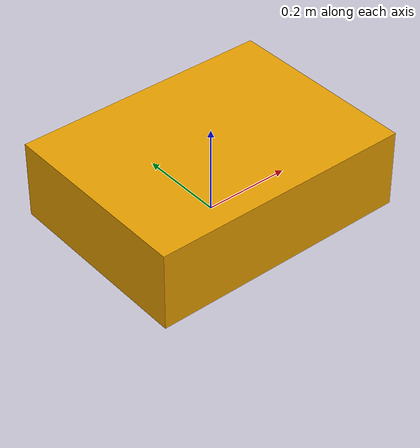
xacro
<?xml version="1.0"?>
<robot xmlns:xacro="http://www.ros.org/wiki/xacro" name="mobile_manipulator">

  <xacro:arg name="rt_loop_hz" default="1000.0"/>
  <xacro:arg name="use_fifo_scheduler" default="false"/>
  <xacro:arg name="rt_priority" default="70"/>
  <xacro:arg name="hardware_bus_plugin" default="robot_hardware_plugins/MockHardwareBus"/>

  <link name="base_link">
    <visual>
      <geometry>
        <box size="0.60 0.45 0.18"/>
      </geometry>
      <origin xyz="0 0 0.09"/>
    </visual>
    <collision>
      <geometry>
        <box size="0.60 0.45 0.18"/>
      </geometry>
      <origin xyz="0 0 0.09"/>
    </collision>
    <inertial>
      <mass value="18.0"/>
      <origin xyz="0 0 0.09"/>
      <inertia ixx="0.55" ixy="0" ixz="0" iyy="0.75" iyz="0" izz="0.95"/>
    </inertial>
  </link>

  <link name="left_wheel_link"/>
  <link name="right_wheel_link"/>

  <joint name="left_wheel_joint" type="continuous">
    <parent link="base_link"/>
    <child link="left_wheel_link"/>
    <origin xyz="0 0.25 0.05" rpy="1.57079632679 0 0"/>
    <axis xyz="0 0 1"/>
  </joint>

  <joint name="right_wheel_joint" type="continuous">
    <parent link="base_link"/>
    <child link="right_wheel_link"/>
    <origin xyz="0 -0.25 0.05" rpy="1.57079632679 0 0"/>
    <axis xyz="0 0 1"/>
  </joint>

  <link name="arm_base_link"/>
  <joint name="arm_mount_joint" type="fixed">
    <parent link="base_link"/>
    <child link="arm_base_link"/>
    <origin xyz="0.10 0 0.20"/>
  </joint>

  <link name="link_1"/>
  <joint name="arm_joint_1" type="revolute">
    <parent link="arm_base_link"/>
    <child link="link_1"/>
    <origin xyz="0 0 0.10"/>
    <axis xyz="0 0 1"/>
    <limit lower="-3.14" upper="3.14" effort="25" velocity="2.0"/>
  </joint>

  <link name="link_2"/>
  <joint name="arm_joint_2" type="revolute">
    <parent link="link_1"/>
    <child link="link_2"/>
    <origin xyz="0.20 0 0.10"/>
    <axis xyz="0 1 0"/>
    <limit lower="-1.57" upper="1.57" effort="25" velocity="2.0"/>
  </joint>

  <link name="link_3"/>
  <joint name="arm_joint_3" type="revolute">
    <parent link="link_2"/>
    <child link="link_3"/>
    <origin xyz="0.20 0 0"/>
    <axis xyz="0 1 0"/>
    <limit lower="-1.57" upper="1.57" effort="25" velocity="2.0"/>
  </joint>

  <link name="gripper_link"/>
  <joint name="gripper_joint" type="prismatic">
    <parent link="link_3"/>
    <child link="gripper_link"/>
    <origin xyz="0.18 0 0"/>
    <axis xyz="1 0 0"/>
    <limit lower="0.0" upper="0.04" effort="10" velocity="0.2"/>
  </joint>

  <ros2_control name="RtMobileManipulator" type="system">
    <hardware>
      <plugin>robot_ros2_control/RtMobileManipulatorSystem</plugin>
      <param name="rt_loop_hz">$(arg rt_loop_hz)</param>
      <param name="use_fifo_scheduler">$(arg use_fifo_scheduler)</param>
      <param name="rt_priority">$(arg rt_priority)</param>
      <param name="hardware_bus_plugin">$(arg hardware_bus_plugin)</param>
      <param name="max_velocity">3.0</param>
      <param name="max_effort">35.0</param>
      <param name="position_kp">8.0</param>
      <param name="velocity_kd">0.15</param>
      <param name="watchdog_timeout_sec">0.2</param>
    </hardware>

    <joint name="left_wheel_joint">
      <command_interface name="velocity"/>
      <command_interface name="position"/>
      <command_interface name="effort"/>
      <state_interface name="position"/>
      <state_interface name="velocity"/>
      <state_interface name="effort"/>
    </joint>

    <joint name="right_wheel_joint">
      <command_interface name="velocity"/>
      <command_interface name="position"/>
      <command_interface name="effort"/>
      <state_interface name="position"/>
      <state_interface name="velocity"/>
      <state_interface name="effort"/>
    </joint>

    <joint name="arm_joint_1">
      <command_interface name="position"/>
      <command_interface name="velocity"/>
      <command_interface name="effort"/>
      <state_interface name="position"/>
      <state_interface name="velocity"/>
      <state_interface name="effort"/>
    </joint>

    <joint name="arm_joint_2">
      <command_interface name="position"/>
      <command_interface name="velocity"/>
      <command_interface name="effort"/>
      <state_interface name="position"/>
      <state_interface name="velocity"/>
      <state_interface name="effort"/>
    </joint>

    <joint name="arm_joint_3">
      <command_interface name="position"/>
      <command_interface name="velocity"/>
      <command_interface name="effort"/>
      <state_interface name="position"/>
      <state_interface name="velocity"/>
      <state_interface name="effort"/>
    </joint>

    <joint name="gripper_joint">
      <command_interface name="position"/>
      <command_interface name="velocity"/>
      <command_interface name="effort"/>
      <state_interface name="position"/>
      <state_interface name="velocity"/>
      <state_interface name="effort"/>
    </joint>
  </ros2_control>

</robot>
